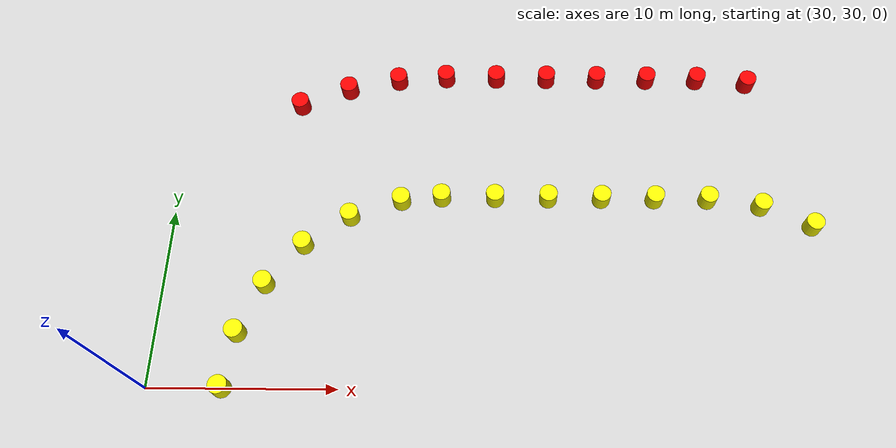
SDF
<sdf version="1.9">
 <world name="empty">
  <model name="ground_plane">
   <static>true</static>
   <link name="link">
    <collision name="collision">
     <geometry><plane><normal>0 0 1</normal><size>1000 1000</size></plane></geometry>
    </collision>
    <visual name="visual">
     <geometry><plane><normal>0 0 1</normal><size>1000 1000</size></plane></geometry>
     <material>
      <ambient>0.8 0.8 0.8 1</ambient>
      <diffuse>0.8 0.8 0.8 1</diffuse>
      <specular>0.8 0.8 0.8 1</specular>
     </material>
    </visual>
    <inertial>
     <mass>1</mass>
     <inertia><ixx>1</ixx><ixy>0</ixy><ixz>0</ixz><iyy>1</iyy><iyz>0</iyz><izz>1</izz></inertia>
    </inertial>
   </link>
  </model>
  <model name="red_cone_25">
   <pose>36.4709133845925 46.97806471618237 0.5 0 -0 0</pose>
   <link name="cylinder_link">
    <inertial>
     <inertia>
      <ixx>0.14580000000000001</ixx>
      <ixy>0</ixy>
      <ixz>0</ixz>
      <iyy>0.14580000000000001</iyy>
      <iyz>0</iyz>
      <izz>0.125</izz>
     </inertia>
     <mass>1</mass>
    </inertial>
    <collision name="cylinder_collision">
     <geometry><cylinder><radius>0.5</radius><length>1</length></cylinder></geometry>
    </collision>
    <visual name="cylinder_visual">
     <geometry><cylinder><radius>0.5</radius><length>1</length></cylinder></geometry>
     <material><ambient>1 0 0 1</ambient><diffuse>1 0 0 1</diffuse><specular>1 1 1 1</specular></material>
    </visual>
   </link>
   <static>false</static>
  </model>
  <model name="red_cone_26">
   <pose>39.246633038466776 48.107975276268135 0.5 0 -0 0</pose>
   <link name="cylinder_link">
    <inertial>
     <inertia>
      <ixx>0.14580000000000001</ixx>
      <ixy>0</ixy>
      <ixz>0</ixz>
      <iyy>0.14580000000000001</iyy>
      <iyz>0</iyz>
      <izz>0.125</izz>
     </inertia>
     <mass>1</mass>
    </inertial>
    <collision name="cylinder_collision">
     <geometry><cylinder><radius>0.5</radius><length>1</length></cylinder></geometry>
    </collision>
    <visual name="cylinder_visual">
     <geometry><cylinder><radius>0.5</radius><length>1</length></cylinder></geometry>
     <material><ambient>1 0 0 1</ambient><diffuse>1 0 0 1</diffuse><specular>1 1 1 1</specular></material>
    </visual>
   </link>
   <static>false</static>
  </model>
  <model name="red_cone_27">
   <pose>42.16549068460405 48.78737759616636 0.5 0 -0 0</pose>
   <link name="cylinder_link">
    <inertial>
     <inertia>
      <ixx>0.14580000000000001</ixx>
      <ixy>0</ixy>
      <ixz>0</ixz>
      <iyy>0.14580000000000001</iyy>
      <iyz>0</iyz>
      <izz>0.125</izz>
     </inertia>
     <mass>1</mass>
    </inertial>
    <collision name="cylinder_collision">
     <geometry><cylinder><radius>0.5</radius><length>1</length></cylinder></geometry>
    </collision>
    <visual name="cylinder_visual">
     <geometry><cylinder><radius>0.5</radius><length>1</length></cylinder></geometry>
     <material><ambient>1 0 0 1</ambient><diffuse>1 0 0 1</diffuse><specular>1 1 1 1</specular></material>
    </visual>
   </link>
   <static>false</static>
  </model>
  <model name="red_cone_28">
   <pose>45.0 49.0 0.5 0 -0 0</pose>
   <link name="cylinder_link">
    <inertial>
     <inertia>
      <ixx>0.14580000000000001</ixx>
      <ixy>0</ixy>
      <ixz>0</ixz>
      <iyy>0.14580000000000001</iyy>
      <iyz>0</iyz>
      <izz>0.125</izz>
     </inertia>
     <mass>1</mass>
    </inertial>
    <collision name="cylinder_collision">
     <geometry><cylinder><radius>0.5</radius><length>1</length></cylinder></geometry>
    </collision>
    <visual name="cylinder_visual">
     <geometry><cylinder><radius>0.5</radius><length>1</length></cylinder></geometry>
     <material><ambient>1 0 0 1</ambient><diffuse>1 0 0 1</diffuse><specular>1 1 1 1</specular></material>
    </visual>
   </link>
   <static>false</static>
  </model>
  <model name="red_cone_29">
   <pose>48.0 49.0 0.5 0 -0 0</pose>
   <link name="cylinder_link">
    <inertial>
     <inertia>
      <ixx>0.14580000000000001</ixx>
      <ixy>0</ixy>
      <ixz>0</ixz>
      <iyy>0.14580000000000001</iyy>
      <iyz>0</iyz>
      <izz>0.125</izz>
     </inertia>
     <mass>1</mass>
    </inertial>
    <collision name="cylinder_collision">
     <geometry><cylinder><radius>0.5</radius><length>1</length></cylinder></geometry>
    </collision>
    <visual name="cylinder_visual">
     <geometry><cylinder><radius>0.5</radius><length>1</length></cylinder></geometry>
     <material><ambient>1 0 0 1</ambient><diffuse>1 0 0 1</diffuse><specular>1 1 1 1</specular></material>
    </visual>
   </link>
   <static>false</static>
  </model>
  <model name="red_cone_30">
   <pose>51.0 49.0 0.5 0 -0 0</pose>
   <link name="cylinder_link">
    <inertial>
     <inertia>
      <ixx>0.14580000000000001</ixx>
      <ixy>0</ixy>
      <ixz>0</ixz>
      <iyy>0.14580000000000001</iyy>
      <iyz>0</iyz>
      <izz>0.125</izz>
     </inertia>
     <mass>1</mass>
    </inertial>
    <collision name="cylinder_collision">
     <geometry><cylinder><radius>0.5</radius><length>1</length></cylinder></geometry>
    </collision>
    <visual name="cylinder_visual">
     <geometry><cylinder><radius>0.5</radius><length>1</length></cylinder></geometry>
     <material><ambient>1 0 0 1</ambient><diffuse>1 0 0 1</diffuse><specular>1 1 1 1</specular></material>
    </visual>
   </link>
   <static>false</static>
  </model>
  <model name="red_cone_31">
   <pose>54.0 49.0 0.5 0 -0 0</pose>
   <link name="cylinder_link">
    <inertial>
     <inertia>
      <ixx>0.14580000000000001</ixx>
      <ixy>0</ixy>
      <ixz>0</ixz>
      <iyy>0.14580000000000001</iyy>
      <iyz>0</iyz>
      <izz>0.125</izz>
     </inertia>
     <mass>1</mass>
    </inertial>
    <collision name="cylinder_collision">
     <geometry><cylinder><radius>0.5</radius><length>1</length></cylinder></geometry>
    </collision>
    <visual name="cylinder_visual">
     <geometry><cylinder><radius>0.5</radius><length>1</length></cylinder></geometry>
     <material><ambient>1 0 0 1</ambient><diffuse>1 0 0 1</diffuse><specular>1 1 1 1</specular></material>
    </visual>
   </link>
   <static>false</static>
  </model>
  <model name="red_cone_32">
   <pose>57.0 49.0 0.5 0 -0 0</pose>
   <link name="cylinder_link">
    <inertial>
     <inertia>
      <ixx>0.14580000000000001</ixx>
      <ixy>0</ixy>
      <ixz>0</ixz>
      <iyy>0.14580000000000001</iyy>
      <iyz>0</iyz>
      <izz>0.125</izz>
     </inertia>
     <mass>1</mass>
    </inertial>
    <collision name="cylinder_collision">
     <geometry><cylinder><radius>0.5</radius><length>1</length></cylinder></geometry>
    </collision>
    <visual name="cylinder_visual">
     <geometry><cylinder><radius>0.5</radius><length>1</length></cylinder></geometry>
     <material><ambient>1 0 0 1</ambient><diffuse>1 0 0 1</diffuse><specular>1 1 1 1</specular></material>
    </visual>
   </link>
   <static>false</static>
  </model>
  <model name="red_cone_33">
   <pose>60.0 49.0 0.5 0 -0 0</pose>
   <link name="cylinder_link">
    <inertial>
     <inertia>
      <ixx>0.14580000000000001</ixx>
      <ixy>0</ixy>
      <ixz>0</ixz>
      <iyy>0.14580000000000001</iyy>
      <iyz>0</iyz>
      <izz>0.125</izz>
     </inertia>
     <mass>1</mass>
    </inertial>
    <collision name="cylinder_collision">
     <geometry><cylinder><radius>0.5</radius><length>1</length></cylinder></geometry>
    </collision>
    <visual name="cylinder_visual">
     <geometry><cylinder><radius>0.5</radius><length>1</length></cylinder></geometry>
     <material><ambient>1 0 0 1</ambient><diffuse>1 0 0 1</diffuse><specular>1 1 1 1</specular></material>
    </visual>
   </link>
   <static>false</static>
  </model>
  <model name="red_cone_34">
   <pose>60.0 49.0 0.5 0 -0 0</pose>
   <link name="cylinder_link">
    <inertial>
     <inertia>
      <ixx>0.14580000000000001</ixx>
      <ixy>0</ixy>
      <ixz>0</ixz>
      <iyy>0.14580000000000001</iyy>
      <iyz>0</iyz>
      <izz>0.125</izz>
     </inertia>
     <mass>1</mass>
    </inertial>
    <collision name="cylinder_collision">
     <geometry><cylinder><radius>0.5</radius><length>1</length></cylinder></geometry>
    </collision>
    <visual name="cylinder_visual">
     <geometry><cylinder><radius>0.5</radius><length>1</length></cylinder></geometry>
     <material><ambient>1 0 0 1</ambient><diffuse>1 0 0 1</diffuse><specular>1 1 1 1</specular></material>
    </visual>
   </link>
   <static>false</static>
  </model>
  <model name="red_cone_35">
   <pose>62.98755015537325 48.76364954024481 0.5 0 -0 0</pose>
   <link name="cylinder_link">
    <inertial>
     <inertia>
      <ixx>0.14580000000000001</ixx>
      <ixy>0</ixy>
      <ixz>0</ixz>
      <iyy>0.14580000000000001</iyy>
      <iyz>0</iyz>
      <izz>0.125</izz>
     </inertia>
     <mass>1</mass>
    </inertial>
    <collision name="cylinder_collision">
     <geometry><cylinder><radius>0.5</radius><length>1</length></cylinder></geometry>
    </collision>
    <visual name="cylinder_visual">
     <geometry><cylinder><radius>0.5</radius><length>1</length></cylinder></geometry>
     <material><ambient>1 0 0 1</ambient><diffuse>1 0 0 1</diffuse><specular>1 1 1 1</specular></material>
    </visual>
   </link>
   <static>false</static>
  </model>
  <model name="yellow_cone_22">
   <pose>34.0 30.0 0.5 0 -0 0</pose>
   <link name="cylinder_link">
    <inertial>
     <inertia>
      <ixx>0.14580000000000001</ixx>
      <ixy>0</ixy>
      <ixz>0</ixz>
      <iyy>0.14580000000000001</iyy>
      <iyz>0</iyz>
      <izz>0.125</izz>
     </inertia>
     <mass>1</mass>
    </inertial>
    <collision name="cylinder_collision">
     <geometry><cylinder><radius>0.5</radius><length>1</length></cylinder></geometry>
    </collision>
    <visual name="cylinder_visual">
     <geometry><cylinder><radius>0.5</radius><length>1</length></cylinder></geometry>
     <material><ambient>1 1 0 1</ambient><diffuse>1 1 0 1</diffuse><specular>1 1 1 1</specular></material>
    </visual>
   </link>
   <static>false</static>
  </model>
  <model name="yellow_cone_23">
   <pose>34.40656150012288 32.96294798289158 0.5 0 -0 0</pose>
   <link name="cylinder_link">
    <inertial>
     <inertia>
      <ixx>0.14580000000000001</ixx>
      <ixy>0</ixy>
      <ixz>0</ixz>
      <iyy>0.14580000000000001</iyy>
      <iyz>0</iyz>
      <izz>0.125</izz>
     </inertia>
     <mass>1</mass>
    </inertial>
    <collision name="cylinder_collision">
     <geometry><cylinder><radius>0.5</radius><length>1</length></cylinder></geometry>
    </collision>
    <visual name="cylinder_visual">
     <geometry><cylinder><radius>0.5</radius><length>1</length></cylinder></geometry>
     <material><ambient>1 1 0 1</ambient><diffuse>1 1 0 1</diffuse><specular>1 1 1 1</specular></material>
    </visual>
   </link>
   <static>false</static>
  </model>
  <model name="yellow_cone_24">
   <pose>35.59619286351297 35.7068740427449 0.5 0 -0 0</pose>
   <link name="cylinder_link">
    <inertial>
     <inertia>
      <ixx>0.14580000000000001</ixx>
      <ixy>0</ixy>
      <ixz>0</ixz>
      <iyy>0.14580000000000001</iyy>
      <iyz>0</iyz>
      <izz>0.125</izz>
     </inertia>
     <mass>1</mass>
    </inertial>
    <collision name="cylinder_collision">
     <geometry><cylinder><radius>0.5</radius><length>1</length></cylinder></geometry>
    </collision>
    <visual name="cylinder_visual">
     <geometry><cylinder><radius>0.5</radius><length>1</length></cylinder></geometry>
     <material><ambient>1 1 0 1</ambient><diffuse>1 1 0 1</diffuse><specular>1 1 1 1</specular></material>
    </visual>
   </link>
   <static>false</static>
  </model>
  <model name="yellow_cone_25">
   <pose>37.48095621531695 38.02894641681081 0.5 0 -0 0</pose>
   <link name="cylinder_link">
    <inertial>
     <inertia>
      <ixx>0.14580000000000001</ixx>
      <ixy>0</ixy>
      <ixz>0</ixz>
      <iyy>0.14580000000000001</iyy>
      <iyz>0</iyz>
      <izz>0.125</izz>
     </inertia>
     <mass>1</mass>
    </inertial>
    <collision name="cylinder_collision">
     <geometry><cylinder><radius>0.5</radius><length>1</length></cylinder></geometry>
    </collision>
    <visual name="cylinder_visual">
     <geometry><cylinder><radius>0.5</radius><length>1</length></cylinder></geometry>
     <material><ambient>1 1 0 1</ambient><diffuse>1 1 0 1</diffuse><specular>1 1 1 1</specular></material>
    </visual>
   </link>
   <static>false</static>
  </model>
  <model name="yellow_cone_26">
   <pose>39.921529334501 39.757516881854016 0.5 0 -0 0</pose>
   <link name="cylinder_link">
    <inertial>
     <inertia>
      <ixx>0.14580000000000001</ixx>
      <ixy>0</ixy>
      <ixz>0</ixz>
      <iyy>0.14580000000000001</iyy>
      <iyz>0</iyz>
      <izz>0.125</izz>
     </inertia>
     <mass>1</mass>
    </inertial>
    <collision name="cylinder_collision">
     <geometry><cylinder><radius>0.5</radius><length>1</length></cylinder></geometry>
    </collision>
    <visual name="cylinder_visual">
     <geometry><cylinder><radius>0.5</radius><length>1</length></cylinder></geometry>
     <material><ambient>1 1 0 1</ambient><diffuse>1 1 0 1</diffuse><specular>1 1 1 1</specular></material>
    </visual>
   </link>
   <static>false</static>
  </model>
  <model name="yellow_cone_27">
   <pose>42.73750439042966 40.7648090376316 0.5 0 -0 0</pose>
   <link name="cylinder_link">
    <inertial>
     <inertia>
      <ixx>0.14580000000000001</ixx>
      <ixy>0</ixy>
      <ixz>0</ixz>
      <iyy>0.14580000000000001</iyy>
      <iyz>0</iyz>
      <izz>0.125</izz>
     </inertia>
     <mass>1</mass>
    </inertial>
    <collision name="cylinder_collision">
     <geometry><cylinder><radius>0.5</radius><length>1</length></cylinder></geometry>
    </collision>
    <visual name="cylinder_visual">
     <geometry><cylinder><radius>0.5</radius><length>1</length></cylinder></geometry>
     <material><ambient>1 1 0 1</ambient><diffuse>1 1 0 1</diffuse><specular>1 1 1 1</specular></material>
    </visual>
   </link>
   <static>false</static>
  </model>
  <model name="yellow_cone_28">
   <pose>45.0 41.0 0.5 0 -0 0</pose>
   <link name="cylinder_link">
    <inertial>
     <inertia>
      <ixx>0.14580000000000001</ixx>
      <ixy>0</ixy>
      <ixz>0</ixz>
      <iyy>0.14580000000000001</iyy>
      <iyz>0</iyz>
      <izz>0.125</izz>
     </inertia>
     <mass>1</mass>
    </inertial>
    <collision name="cylinder_collision">
     <geometry><cylinder><radius>0.5</radius><length>1</length></cylinder></geometry>
    </collision>
    <visual name="cylinder_visual">
     <geometry><cylinder><radius>0.5</radius><length>1</length></cylinder></geometry>
     <material><ambient>1 1 0 1</ambient><diffuse>1 1 0 1</diffuse><specular>1 1 1 1</specular></material>
    </visual>
   </link>
   <static>false</static>
  </model>
  <model name="yellow_cone_29">
   <pose>48.0 41.0 0.5 0 -0 0</pose>
   <link name="cylinder_link">
    <inertial>
     <inertia>
      <ixx>0.14580000000000001</ixx>
      <ixy>0</ixy>
      <ixz>0</ixz>
      <iyy>0.14580000000000001</iyy>
      <iyz>0</iyz>
      <izz>0.125</izz>
     </inertia>
     <mass>1</mass>
    </inertial>
    <collision name="cylinder_collision">
     <geometry><cylinder><radius>0.5</radius><length>1</length></cylinder></geometry>
    </collision>
    <visual name="cylinder_visual">
     <geometry><cylinder><radius>0.5</radius><length>1</length></cylinder></geometry>
     <material><ambient>1 1 0 1</ambient><diffuse>1 1 0 1</diffuse><specular>1 1 1 1</specular></material>
    </visual>
   </link>
   <static>false</static>
  </model>
  <model name="yellow_cone_30">
   <pose>51.0 41.0 0.5 0 -0 0</pose>
   <link name="cylinder_link">
    <inertial>
     <inertia>
      <ixx>0.14580000000000001</ixx>
      <ixy>0</ixy>
      <ixz>0</ixz>
      <iyy>0.14580000000000001</iyy>
      <iyz>0</iyz>
      <izz>0.125</izz>
     </inertia>
     <mass>1</mass>
    </inertial>
    <collision name="cylinder_collision">
     <geometry><cylinder><radius>0.5</radius><length>1</length></cylinder></geometry>
    </collision>
    <visual name="cylinder_visual">
     <geometry><cylinder><radius>0.5</radius><length>1</length></cylinder></geometry>
     <material><ambient>1 1 0 1</ambient><diffuse>1 1 0 1</diffuse><specular>1 1 1 1</specular></material>
    </visual>
   </link>
   <static>false</static>
  </model>
  <model name="yellow_cone_31">
   <pose>54.0 41.0 0.5 0 -0 0</pose>
   <link name="cylinder_link">
    <inertial>
     <inertia>
      <ixx>0.14580000000000001</ixx>
      <ixy>0</ixy>
      <ixz>0</ixz>
      <iyy>0.14580000000000001</iyy>
      <iyz>0</iyz>
      <izz>0.125</izz>
     </inertia>
     <mass>1</mass>
    </inertial>
    <collision name="cylinder_collision">
     <geometry><cylinder><radius>0.5</radius><length>1</length></cylinder></geometry>
    </collision>
    <visual name="cylinder_visual">
     <geometry><cylinder><radius>0.5</radius><length>1</length></cylinder></geometry>
     <material><ambient>1 1 0 1</ambient><diffuse>1 1 0 1</diffuse><specular>1 1 1 1</specular></material>
    </visual>
   </link>
   <static>false</static>
  </model>
  <model name="yellow_cone_32">
   <pose>57.0 41.0 0.5 0 -0 0</pose>
   <link name="cylinder_link">
    <inertial>
     <inertia>
      <ixx>0.14580000000000001</ixx>
      <ixy>0</ixy>
      <ixz>0</ixz>
      <iyy>0.14580000000000001</iyy>
      <iyz>0</iyz>
      <izz>0.125</izz>
     </inertia>
     <mass>1</mass>
    </inertial>
    <collision name="cylinder_collision">
     <geometry><cylinder><radius>0.5</radius><length>1</length></cylinder></geometry>
    </collision>
    <visual name="cylinder_visual">
     <geometry><cylinder><radius>0.5</radius><length>1</length></cylinder></geometry>
     <material><ambient>1 1 0 1</ambient><diffuse>1 1 0 1</diffuse><specular>1 1 1 1</specular></material>
    </visual>
   </link>
   <static>false</static>
  </model>
  <model name="yellow_cone_33">
   <pose>60.0 41.0 0.5 0 -0 0</pose>
   <link name="cylinder_link">
    <inertial>
     <inertia>
      <ixx>0.14580000000000001</ixx>
      <ixy>0</ixy>
      <ixz>0</ixz>
      <iyy>0.14580000000000001</iyy>
      <iyz>0</iyz>
      <izz>0.125</izz>
     </inertia>
     <mass>1</mass>
    </inertial>
    <collision name="cylinder_collision">
     <geometry><cylinder><radius>0.5</radius><length>1</length></cylinder></geometry>
    </collision>
    <visual name="cylinder_visual">
     <geometry><cylinder><radius>0.5</radius><length>1</length></cylinder></geometry>
     <material><ambient>1 1 0 1</ambient><diffuse>1 1 0 1</diffuse><specular>1 1 1 1</specular></material>
    </visual>
   </link>
   <static>false</static>
  </model>
  <model name="yellow_cone_34">
   <pose>60.0 41.0 0.5 0 -0 0</pose>
   <link name="cylinder_link">
    <inertial>
     <inertia>
      <ixx>0.14580000000000001</ixx>
      <ixy>0</ixy>
      <ixz>0</ixz>
      <iyy>0.14580000000000001</iyy>
      <iyz>0</iyz>
      <izz>0.125</izz>
     </inertia>
     <mass>1</mass>
    </inertial>
    <collision name="cylinder_collision">
     <geometry><cylinder><radius>0.5</radius><length>1</length></cylinder></geometry>
    </collision>
    <visual name="cylinder_visual">
     <geometry><cylinder><radius>0.5</radius><length>1</length></cylinder></geometry>
     <material><ambient>1 1 0 1</ambient><diffuse>1 1 0 1</diffuse><specular>1 1 1 1</specular></material>
    </visual>
   </link>
   <static>false</static>
  </model>
  <model name="yellow_cone_35">
   <pose>62.96294798289158 40.59343849987712 0.5 0 -0 0</pose>
   <link name="cylinder_link">
    <inertial>
     <inertia>
      <ixx>0.14580000000000001</ixx>
      <ixy>0</ixy>
      <ixz>0</ixz>
      <iyy>0.14580000000000001</iyy>
      <iyz>0</iyz>
      <izz>0.125</izz>
     </inertia>
     <mass>1</mass>
    </inertial>
    <collision name="cylinder_collision">
     <geometry><cylinder><radius>0.5</radius><length>1</length></cylinder></geometry>
    </collision>
    <visual name="cylinder_visual">
     <geometry><cylinder><radius>0.5</radius><length>1</length></cylinder></geometry>
     <material><ambient>1 1 0 1</ambient><diffuse>1 1 0 1</diffuse><specular>1 1 1 1</specular></material>
    </visual>
   </link>
   <static>false</static>
  </model>
  <model name="yellow_cone_36">
   <pose>65.7068740427449 39.40380713648704 0.5 0 -0 0</pose>
   <link name="cylinder_link">
    <inertial>
     <inertia>
      <ixx>0.14580000000000001</ixx>
      <ixy>0</ixy>
      <ixz>0</ixz>
      <iyy>0.14580000000000001</iyy>
      <iyz>0</iyz>
      <izz>0.125</izz>
     </inertia>
     <mass>1</mass>
    </inertial>
    <collision name="cylinder_collision">
     <geometry><cylinder><radius>0.5</radius><length>1</length></cylinder></geometry>
    </collision>
    <visual name="cylinder_visual">
     <geometry><cylinder><radius>0.5</radius><length>1</length></cylinder></geometry>
     <material><ambient>1 1 0 1</ambient><diffuse>1 1 0 1</diffuse><specular>1 1 1 1</specular></material>
    </visual>
   </link>
   <static>false</static>
  </model>
 </world>
</sdf>
